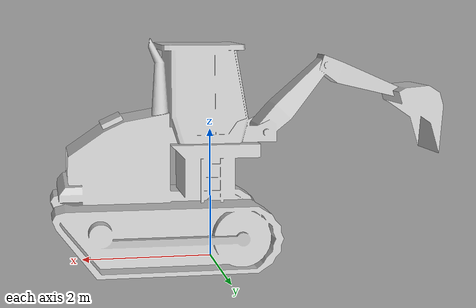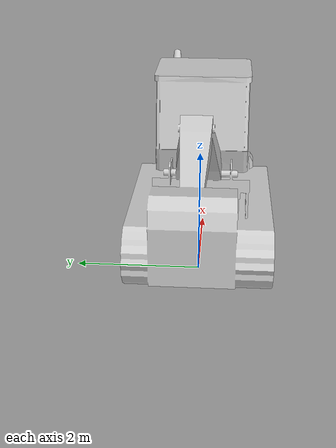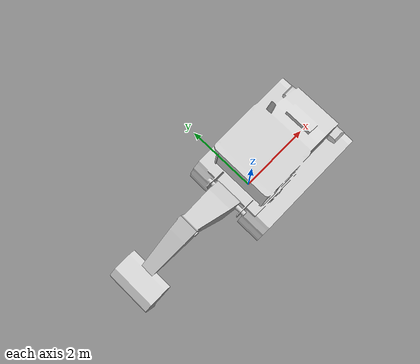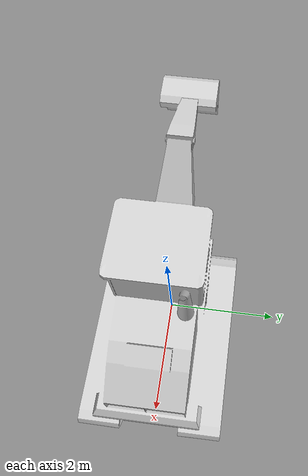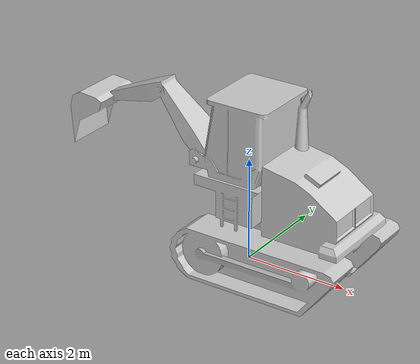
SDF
<?xml version="1.0" ?>
<sdf version="1.6">
  <model name="bulldozer2">
    <static>true</static>
    <link name="link">
      <collision name="collision">
        <pose>0 0 0 0 0 0</pose>
        <geometry>
          <mesh>
            <scale>0.5 0.5 0.5</scale>
            <uri>model://bulldozer2/meshes/bulldozer2.dae</uri>
          </mesh>
        </geometry>
      </collision>
      <visual name="visual">
        <pose>0 0 0 0 0 0</pose>
        <geometry>
          <mesh>
            <scale>0.5 0.5 0.5</scale>
            <uri>model://bulldozer2/meshes/bulldozer2.dae</uri>
          </mesh>
        </geometry>
      </visual>
    </link>
  </model>
</sdf>
